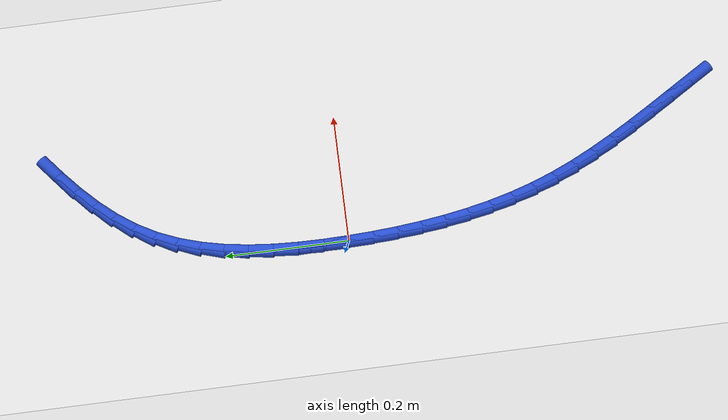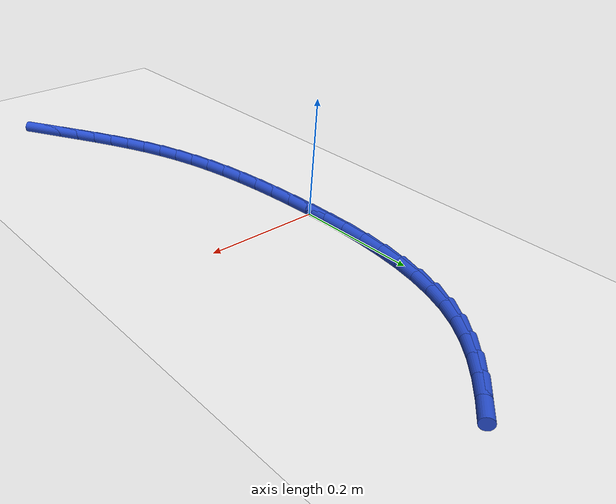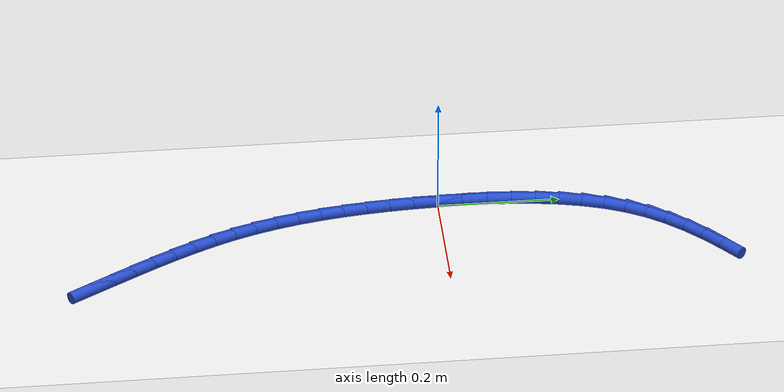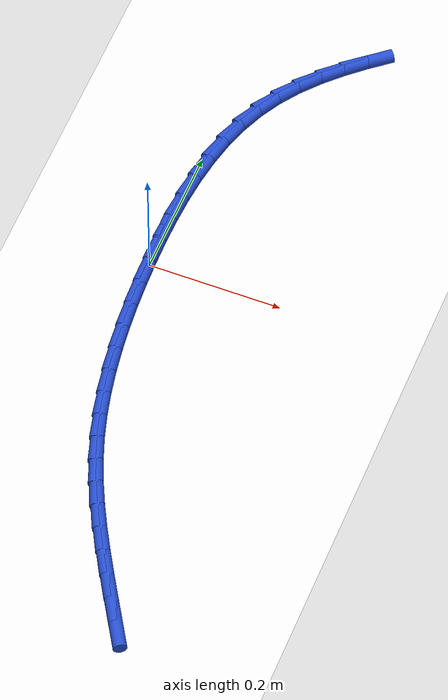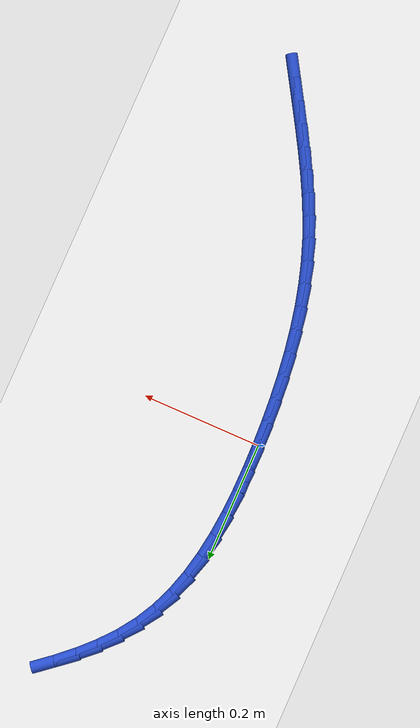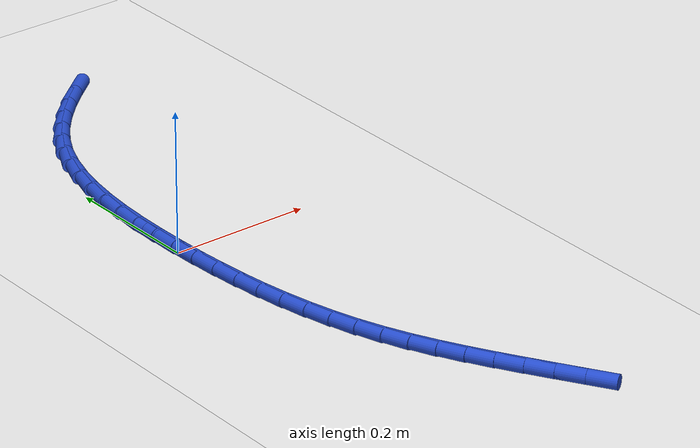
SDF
<sdf version="1.6">
 <world name="default">
  <model name="ground_plane">
   <static>1</static>
   <link name="link">
    <collision name="collision">
     <geometry><plane><normal>0 0 1</normal><size>100 100</size></plane></geometry>
     <surface><friction><ode><mu>100</mu><mu2>50</mu2></ode></friction></surface>
    </collision>
    <visual name="visual">
     <cast_shadows>0</cast_shadows>
     <geometry><plane><normal>0 0 1</normal><size>100 100</size></plane></geometry>
     <material>
      <script><uri>file://media/materials/scripts/gazebo.material</uri><name>Gazebo/WhiteGlow</name></script>
     </material>
    </visual>
   </link>
  </model>
  <model name="line">
   <link name="link_0">
    <pose>8.239936510889834e-18 6.938893903907228e-18 0.01 0 1.57 -1.5526000872879415</pose>
    <collision name="collision">
     <geometry><cylinder><radius>0.01</radius><length>0.08</length></cylinder></geometry>
    </collision>
    <visual name="visual">
     <material>
      <script><name>Gazebo/Blue</name><uri>file://media/materials/scripts/gazebo.material</uri></script>
     </material>
     <geometry><cylinder><radius>0.01</radius><length>0.08</length></cylinder></geometry>
    </visual>
   </link>
   <link name="link_1">
    <pose>-0.000732652734478924 0.04025952017222592 0.01 0 1.57 1.5597687728267733</pose>
    <collision name="collision">
     <geometry><cylinder><radius>0.01</radius><length>0.08</length></cylinder></geometry>
    </collision>
    <visual name="visual">
     <material>
      <script><name>Gazebo/Blue</name><uri>file://media/materials/scripts/gazebo.material</uri></script>
     </material>
     <geometry><cylinder><radius>0.01</radius><length>0.08</length></cylinder></geometry>
    </visual>
   </link>
   <link name="link_2">
    <pose>-0.0002883550283096901 0.08054766543197024 0.01 0 1.57 1.5225612813790046</pose>
    <collision name="collision">
     <geometry><cylinder><radius>0.01</radius><length>0.08</length></cylinder></geometry>
    </collision>
    <visual name="visual">
     <material>
      <script><name>Gazebo/Blue</name><uri>file://media/materials/scripts/gazebo.material</uri></script>
     </material>
     <geometry><cylinder><radius>0.01</radius><length>0.08</length></cylinder></geometry>
    </visual>
   </link>
   <link name="link_3">
    <pose>0.0016430891256004592 0.12055894753888144 0.01 0 1.57 1.4765069372273887</pose>
    <collision name="collision">
     <geometry><cylinder><radius>0.01</radius><length>0.08</length></cylinder></geometry>
    </collision>
    <visual name="visual">
     <material>
      <script><name>Gazebo/Blue</name><uri>file://media/materials/scripts/gazebo.material</uri></script>
     </material>
     <geometry><cylinder><radius>0.01</radius><length>0.08</length></cylinder></geometry>
    </visual>
   </link>
   <link name="link_4">
    <pose>0.005371875734344265 0.1599878782526079 0.01 0 1.57 1.4205069318251253</pose>
    <collision name="collision">
     <geometry><cylinder><radius>0.01</radius><length>0.08</length></cylinder></geometry>
    </collision>
    <visual name="visual">
     <material>
      <script><name>Gazebo/Blue</name><uri>file://media/materials/scripts/gazebo.material</uri></script>
     </material>
     <geometry><cylinder><radius>0.01</radius><length>0.08</length></cylinder></geometry>
    </visual>
   </link>
   <link name="link_5">
    <pose>0.01120820080501447 0.19852896933279812 0.01 0 1.57 1.3532871832848776</pose>
    <collision name="collision">
     <geometry><cylinder><radius>0.01</radius><length>0.08</length></cylinder></geometry>
    </collision>
    <visual name="visual">
     <material>
      <script><name>Gazebo/Blue</name><uri>file://media/materials/scripts/gazebo.material</uri></script>
     </material>
     <geometry><cylinder><radius>0.01</radius><length>0.08</length></cylinder></geometry>
    </visual>
   </link>
   <link name="link_6">
    <pose>0.01946226034470383 0.2358767325391006 0.01 0 1.57 1.273532614765716</pose>
    <collision name="collision">
     <geometry><cylinder><radius>0.01</radius><length>0.08</length></cylinder></geometry>
    </collision>
    <visual name="visual">
     <material>
      <script><name>Gazebo/Blue</name><uri>file://media/materials/scripts/gazebo.material</uri></script>
     </material>
     <geometry><cylinder><radius>0.01</radius><length>0.08</length></cylinder></geometry>
    </visual>
   </link>
   <link name="link_7">
    <pose>0.030444250360505055 0.2717256796311635 0.01 0 1.57 1.180145729644687</pose>
    <collision name="collision">
     <geometry><cylinder><radius>0.01</radius><length>0.08</length></cylinder></geometry>
    </collision>
    <visual name="visual">
     <material>
      <script><name>Gazebo/Blue</name><uri>file://media/materials/scripts/gazebo.material</uri></script>
     </material>
     <geometry><cylinder><radius>0.01</radius><length>0.08</length></cylinder></geometry>
    </visual>
   </link>
   <link name="link_8">
    <pose>0.044464366859510954 0.30577032236863555 0.01 0 1.57 1.0729865439448916</pose>
    <collision name="collision">
     <geometry><cylinder><radius>0.01</radius><length>0.08</length></cylinder></geometry>
    </collision>
    <visual name="visual">
     <material>
      <script><name>Gazebo/Blue</name><uri>file://media/materials/scripts/gazebo.material</uri></script>
     </material>
     <geometry><cylinder><radius>0.01</radius><length>0.08</length></cylinder></geometry>
    </visual>
   </link>
   <link name="link_9">
    <pose>0.06182383061221295 0.33771269113031743 0.01 0 1.57 0.9642324731430263</pose>
    <collision name="collision">
     <geometry><cylinder><radius>0.01</radius><length>0.08</length></cylinder></geometry>
    </collision>
    <visual name="visual">
     <material>
      <script><name>Gazebo/Blue</name><uri>file://media/materials/scripts/gazebo.material</uri></script>
     </material>
     <geometry><cylinder><radius>0.01</radius><length>0.08</length></cylinder></geometry>
    </visual>
   </link>
   <link name="link_10">
    <pose>0.08250561355194011 0.3675214155958039 0.01 0 1.57 0.8702356550018028</pose>
    <collision name="collision">
     <geometry><cylinder><radius>0.01</radius><length>0.08</length></cylinder></geometry>
    </collision>
    <visual name="visual">
     <material>
      <script><name>Gazebo/Blue</name><uri>file://media/materials/scripts/gazebo.material</uri></script>
     </material>
     <geometry><cylinder><radius>0.01</radius><length>0.08</length></cylinder></geometry>
    </visual>
   </link>
   <link name="link_11">
    <pose>0.10609618421567167 0.3954972791429456 0.01 0 1.57 0.7930828628265129</pose>
    <collision name="collision">
     <geometry><cylinder><radius>0.01</radius><length>0.08</length></cylinder></geometry>
    </collision>
    <visual name="visual">
     <material>
      <script><name>Gazebo/Blue</name><uri>file://media/materials/scripts/gazebo.material</uri></script>
     </material>
     <geometry><cylinder><radius>0.01</radius><length>0.08</length></cylinder></geometry>
    </visual>
   </link>
   <link name="link_12">
    <pose>0.13215714747092824 0.42196189362127523 0.01 0 1.57 0.7326442263240933</pose>
    <collision name="collision">
     <geometry><cylinder><radius>0.01</radius><length>0.08</length></cylinder></geometry>
    </collision>
    <visual name="visual">
     <material>
      <script><name>Gazebo/Blue</name><uri>file://media/materials/scripts/gazebo.material</uri></script>
     </material>
     <geometry><cylinder><radius>0.01</radius><length>0.08</length></cylinder></geometry>
    </visual>
   </link>
   <link name="link_13">
    <pose>0.16025010818523053 0.44723687088032615 0.01 0 1.57 0.6881047688973753</pose>
    <collision name="collision">
     <geometry><cylinder><radius>0.01</radius><length>0.08</length></cylinder></geometry>
    </collision>
    <visual name="visual">
     <material>
      <script><name>Gazebo/Blue</name><uri>file://media/materials/scripts/gazebo.material</uri></script>
     </material>
     <geometry><cylinder><radius>0.01</radius><length>0.08</length></cylinder></geometry>
    </visual>
   </link>
   <link name="link_174">
    <pose>0.18608238427982776 -0.5729397015148919 0.01 0 1.57 -1.025314146464686</pose>
    <collision name="collision">
     <geometry><cylinder><radius>0.01</radius><length>0.08</length></cylinder></geometry>
    </collision>
    <visual name="visual">
     <material>
      <script><name>Gazebo/Blue</name><uri>file://media/materials/scripts/gazebo.material</uri></script>
     </material>
     <geometry><cylinder><radius>0.01</radius><length>0.08</length></cylinder></geometry>
    </visual>
   </link>
   <link name="link_175">
    <pose>0.16529002282874763 -0.5386801097923578 0.01 0 1.57 -1.0287120712679974</pose>
    <collision name="collision">
     <geometry><cylinder><radius>0.01</radius><length>0.08</length></cylinder></geometry>
    </collision>
    <visual name="visual">
     <material>
      <script><name>Gazebo/Blue</name><uri>file://media/materials/scripts/gazebo.material</uri></script>
     </material>
     <geometry><cylinder><radius>0.01</radius><length>0.08</length></cylinder></geometry>
    </visual>
   </link>
   <link name="link_176">
    <pose>0.14508629089472572 -0.5051339345741849 0.01 0 1.57 -1.040060752206856</pose>
    <collision name="collision">
     <geometry><cylinder><radius>0.01</radius><length>0.08</length></cylinder></geometry>
    </collision>
    <visual name="visual">
     <material>
      <script><name>Gazebo/Blue</name><uri>file://media/materials/scripts/gazebo.material</uri></script>
     </material>
     <geometry><cylinder><radius>0.01</radius><length>0.08</length></cylinder></geometry>
    </visual>
   </link>
   <link name="link_177">
    <pose>0.12566423656669687 -0.47204163408978705 0.01 0 1.57 -1.0597420163587226</pose>
    <collision name="collision">
     <geometry><cylinder><radius>0.01</radius><length>0.08</length></cylinder></geometry>
    </collision>
    <visual name="visual">
     <material>
      <script><name>Gazebo/Blue</name><uri>file://media/materials/scripts/gazebo.material</uri></script>
     </material>
     <geometry><cylinder><radius>0.01</radius><length>0.08</length></cylinder></geometry>
    </visual>
   </link>
   <link name="link_178">
    <pose>0.1072169079335959 -0.43914366656857867 0.01 0 1.57 -1.0879705398241695</pose>
    <collision name="collision">
     <geometry><cylinder><radius>0.01</radius><length>0.08</length></cylinder></geometry>
    </collision>
    <visual name="visual">
     <material>
      <script><name>Gazebo/Blue</name><uri>file://media/materials/scripts/gazebo.material</uri></script>
     </material>
     <geometry><cylinder><radius>0.01</radius><length>0.08</length></cylinder></geometry>
    </visual>
   </link>
   <link name="link_179">
    <pose>0.08993735308435802 -0.4061804902399747 0.01 0 1.57 -1.1247294048505445</pose>
    <collision name="collision">
     <geometry><cylinder><radius>0.01</radius><length>0.08</length></cylinder></geometry>
    </collision>
    <visual name="visual">
     <material>
      <script><name>Gazebo/Blue</name><uri>file://media/materials/scripts/gazebo.material</uri></script>
     </material>
     <geometry><cylinder><radius>0.01</radius><length>0.08</length></cylinder></geometry>
    </visual>
   </link>
   <link name="link_180">
    <pose>0.0740186201079173 -0.3728925633333876 0.01 0 1.57 -1.1696968713406224</pose>
    <collision name="collision">
     <geometry><cylinder><radius>0.01</radius><length>0.08</length></cylinder></geometry>
    </collision>
    <visual name="visual">
     <material>
      <script><name>Gazebo/Blue</name><uri>file://media/materials/scripts/gazebo.material</uri></script>
     </material>
     <geometry><cylinder><radius>0.01</radius><length>0.08</length></cylinder></geometry>
    </visual>
   </link>
   <link name="link_181">
    <pose>0.05965375709320899 -0.33902034407823267 0.01 0 1.57 -1.2218202849207014</pose>
    <collision name="collision">
     <geometry><cylinder><radius>0.01</radius><length>0.08</length></cylinder></geometry>
    </collision>
    <visual name="visual">
     <material>
      <script><name>Gazebo/Blue</name><uri>file://media/materials/scripts/gazebo.material</uri></script>
     </material>
     <geometry><cylinder><radius>0.01</radius><length>0.08</length></cylinder></geometry>
    </visual>
   </link>
   <link name="link_182">
    <pose>0.04702568402336029 -0.30431530099738974 0.01 0 1.57 -1.2745383430438613</pose>
    <collision name="collision">
     <geometry><cylinder><radius>0.01</radius><length>0.08</length></cylinder></geometry>
    </collision>
    <visual name="visual">
     <material>
      <script><name>Gazebo/Blue</name><uri>file://media/materials/scripts/gazebo.material</uri></script>
     </material>
     <geometry><cylinder><radius>0.01</radius><length>0.08</length></cylinder></geometry>
    </visual>
   </link>
   <link name="link_183">
    <pose>0.0361558069763204 -0.26870448485276965 0.01 0 1.57 -1.323037028873077</pose>
    <collision name="collision">
     <geometry><cylinder><radius>0.01</radius><length>0.08</length></cylinder></geometry>
    </collision>
    <visual name="visual">
     <material>
      <script><name>Gazebo/Blue</name><uri>file://media/materials/scripts/gazebo.material</uri></script>
     </material>
     <geometry><cylinder><radius>0.01</radius><length>0.08</length></cylinder></geometry>
    </visual>
   </link>
   <link name="link_184">
    <pose>0.026935894773506282 -0.2322558754472761 0.01 0 1.57 -1.3672346552930634</pose>
    <collision name="collision">
     <geometry><cylinder><radius>0.01</radius><length>0.08</length></cylinder></geometry>
    </collision>
    <visual name="visual">
     <material>
      <script><name>Gazebo/Blue</name><uri>file://media/materials/scripts/gazebo.material</uri></script>
     </material>
     <geometry><cylinder><radius>0.01</radius><length>0.08</length></cylinder></geometry>
    </visual>
   </link>
   <link name="link_185">
    <pose>0.019254060213393594 -0.19504142705705246 0.01 0 1.57 -1.4072499558559861</pose>
    <collision name="collision">
     <geometry><cylinder><radius>0.01</radius><length>0.08</length></cylinder></geometry>
    </collision>
    <visual name="visual">
     <material>
      <script><name>Gazebo/Blue</name><uri>file://media/materials/scripts/gazebo.material</uri></script>
     </material>
     <geometry><cylinder><radius>0.01</radius><length>0.08</length></cylinder></geometry>
    </visual>
   </link>
   <link name="link_186">
    <pose>0.012998416094458126 -0.15713309395824276 0.01 0 1.57 -1.4432468463880703</pose>
    <collision name="collision">
     <geometry><cylinder><radius>0.01</radius><length>0.08</length></cylinder></geometry>
    </collision>
    <visual name="visual">
     <material>
      <script><name>Gazebo/Blue</name><uri>file://media/materials/scripts/gazebo.material</uri></script>
     </material>
     <geometry><cylinder><radius>0.01</radius><length>0.08</length></cylinder></geometry>
    </visual>
   </link>
   <link name="link_187">
    <pose>0.008057075215175286 -0.11860283042698888 0.01 0 1.57 -1.4754136155444015</pose>
    <collision name="collision">
     <geometry><cylinder><radius>0.01</radius><length>0.08</length></cylinder></geometry>
    </collision>
    <visual name="visual">
     <material>
      <script><name>Gazebo/Blue</name><uri>file://media/materials/scripts/gazebo.material</uri></script>
     </material>
     <geometry><cylinder><radius>0.01</radius><length>0.08</length></cylinder></geometry>
    </visual>
   </link>
   <link name="link_188">
    <pose>0.004318150374020876 -0.0795225907394349 0.01 0 1.57 -1.5039468337959403</pose>
    <collision name="collision">
     <geometry><cylinder><radius>0.01</radius><length>0.08</length></cylinder></geometry>
    </collision>
    <visual name="visual">
     <material>
      <script><name>Gazebo/Blue</name><uri>file://media/materials/scripts/gazebo.material</uri></script>
     </material>
     <geometry><cylinder><radius>0.01</radius><length>0.08</length></cylinder></geometry>
    </visual>
   </link>
   <link name="link_189">
    <pose>0.0016697543694705653 -0.039964329171724225 0.01 0 1.57 -1.529039494849694</pose>
    <collision name="collision">
     <geometry><cylinder><radius>0.01</radius><length>0.08</length></cylinder></geometry>
    </collision>
    <visual name="visual">
     <material>
      <script><name>Gazebo/Blue</name><uri>file://media/materials/scripts/gazebo.material</uri></script>
     </material>
     <geometry><cylinder><radius>0.01</radius><length>0.08</length></cylinder></geometry>
    </visual>
   </link>
   <link name="link_190">
    <pose>2.0383000842727483e-17 -2.0816681711721685e-16 0.01 0 1.57 -1.550872636644376</pose>
    <collision name="collision">
     <geometry><cylinder><radius>0.01</radius><length>0.08</length></cylinder></geometry>
    </collision>
    <visual name="visual">
     <material>
      <script><name>Gazebo/Blue</name><uri>file://media/materials/scripts/gazebo.material</uri></script>
     </material>
     <geometry><cylinder><radius>0.01</radius><length>0.08</length></cylinder></geometry>
    </visual>
   </link>
   <link name="link_191">
    <pose>-0.0008029999359150984 0.04029844249959385 0.01 0 1.57 -1.5508726366443761</pose>
    <collision name="collision">
     <geometry><cylinder><radius>0.01</radius><length>0.08</length></cylinder></geometry>
    </collision>
    <visual name="visual">
     <material>
      <script><name>Gazebo/Blue</name><uri>file://media/materials/scripts/gazebo.material</uri></script>
     </material>
     <geometry><cylinder><radius>0.01</radius><length>0.08</length></cylinder></geometry>
    </visual>
   </link>
  </model>
 </world>
</sdf>
